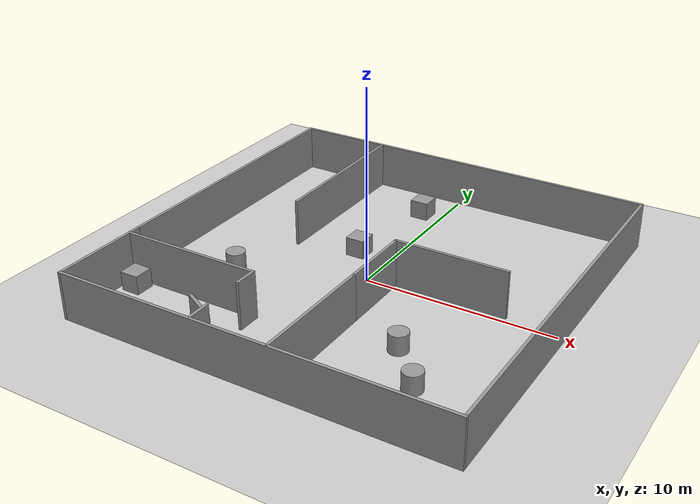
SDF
<sdf version="1.7">
 <world name="default">
  <light name="sun" type="directional">
   <pose>0 0 10 0 -0 0</pose>
   <diffuse>0.8 0.8 0.8 1</diffuse>
   <specular>0.2 0.2 0.2 1</specular>
   <attenuation>
    <range>1000</range>
    <constant>0.9</constant>
    <linear>0.01</linear>
    <quadratic>0.001</quadratic>
   </attenuation>
   <direction>-0.5 0.1 -0.9</direction>
   <spot><inner_angle>0</inner_angle><outer_angle>0</outer_angle><falloff>0</falloff></spot>
  </light>
  <model name="ground_plane">
   <static>1</static>
   <link name="link">
    <collision name="collision">
     <geometry><plane><normal>0 0 1</normal><size>100 100</size></plane></geometry>
     <surface><friction><ode><mu>100</mu><mu2>50</mu2></ode></friction></surface>
    </collision>
    <visual name="visual">
     <cast_shadows>0</cast_shadows>
     <geometry><plane><normal>0 0 1</normal><size>100 100</size></plane></geometry>
     <material>
      <script><uri>file://media/materials/scripts/gazebo.material</uri><name>Gazebo/Grey</name></script>
     </material>
    </visual>
   </link>
  </model>
  <gravity>0 0 -9.8</gravity>
  <magnetic_field>6e-06 2.3e-05 -4.2e-05</magnetic_field>
  <atmosphere type="adiabatic"/>
  <physics type="ode">
   <max_step_size>0.001</max_step_size>
   <real_time_factor>1</real_time_factor>
   <real_time_update_rate>1000</real_time_update_rate>
  </physics>
  <scene><ambient>0.4 0.4 0.4 1</ambient><background>0.7 0.7 0.7 1</background><shadows>1</shadows></scene>
  <audio><device>default</device></audio>
  <spherical_coordinates>
   <surface_model>EARTH_WGS84</surface_model>
   <latitude_deg>0</latitude_deg>
   <longitude_deg>0</longitude_deg>
   <elevation>0</elevation>
   <heading_deg>0</heading_deg>
  </spherical_coordinates>
  <model name="square">
   <pose>0.095 0.025 0 0 -0 0</pose>
   <link name="Wall_2">
    <collision name="Wall_2_Collision">
     <geometry><box><size>15.25 0.15 2.5</size></box></geometry>
     <pose>0 0 1.25 0 -0 0</pose>
    </collision>
    <visual name="Wall_2_Visual">
     <pose>0 0 1.25 0 -0 0</pose>
     <geometry><box><size>15.25 0.15 2.5</size></box></geometry>
     <material>
      <script><uri>file://media/materials/scripts/gazebo.material</uri><name>Gazebo/Grey</name></script>
      <ambient>1 1 1 1</ambient>
     </material>
     <meta><layer>0</layer></meta>
    </visual>
    <pose>-10.175 2.625 0 0 -0 1.5708</pose>
   </link>
   <link name="Wall_5">
    <collision name="Wall_5_Collision">
     <geometry><box><size>20.5 0.15 2.5</size></box></geometry>
     <pose>0 0 1.25 0 -0 0</pose>
    </collision>
    <visual name="Wall_5_Visual">
     <pose>0 0 1.25 0 -0 0</pose>
     <geometry><box><size>20.5 0.15 2.5</size></box></geometry>
     <material>
      <script><uri>file://media/materials/scripts/gazebo.material</uri><name>Gazebo/Grey</name></script>
      <ambient>1 1 1 1</ambient>
     </material>
     <meta><layer>0</layer></meta>
    </visual>
    <pose>-0 10.175 0 0 -0 0</pose>
   </link>
   <link name="Wall_6">
    <collision name="Wall_6_Collision">
     <geometry><box><size>20.5 0.15 2.5</size></box></geometry>
     <pose>0 0 1.25 0 -0 0</pose>
    </collision>
    <visual name="Wall_6_Visual">
     <pose>0 0 1.25 0 -0 0</pose>
     <geometry><box><size>20.5 0.15 2.5</size></box></geometry>
     <material>
      <script><uri>file://media/materials/scripts/gazebo.material</uri><name>Gazebo/Grey</name></script>
      <ambient>1 1 1 1</ambient>
     </material>
     <meta><layer>0</layer></meta>
    </visual>
    <pose>10.175 -0 0 0 -0 -1.5708</pose>
   </link>
   <link name="Wall_7">
    <collision name="Wall_7_Collision">
     <geometry><box><size>20.5 0.15 2.5</size></box></geometry>
     <pose>0 0 1.25 0 -0 0</pose>
    </collision>
    <visual name="Wall_7_Visual">
     <pose>0 0 1.25 0 -0 0</pose>
     <geometry><box><size>20.5 0.15 2.5</size></box></geometry>
     <material>
      <script><uri>file://media/materials/scripts/gazebo.material</uri><name>Gazebo/Grey</name></script>
      <ambient>1 1 1 1</ambient>
     </material>
     <meta><layer>0</layer></meta>
    </visual>
    <pose>-0 -10.175 0 0 -0 3.14159</pose>
   </link>
   <link name="Wall_8">
    <collision name="Wall_8_Collision">
     <geometry><box><size>5.25 0.15 2.5</size></box></geometry>
     <pose>0 0 1.25 0 -0 0</pose>
    </collision>
    <visual name="Wall_8_Visual">
     <pose>0 0 1.25 0 -0 0</pose>
     <geometry><box><size>5.25 0.15 2.5</size></box></geometry>
     <material>
      <script><uri>file://media/materials/scripts/gazebo.material</uri><name>Gazebo/Grey</name></script>
      <ambient>1 1 1 1</ambient>
     </material>
     <meta><layer>0</layer></meta>
    </visual>
    <pose>-10.175 -7.625 0 0 -0 1.5708</pose>
   </link>
   <static>1</static>
  </model>
  <model name="simple_room">
   <pose>-1.37102 -0.02919 0 0 -0 0</pose>
   <link name="Door_0">
    <collision name="Door_0_Collision">
     <geometry><box><size>2 0.17 2</size></box></geometry>
     <pose>0 0 1 0 -0 0</pose>
    </collision>
    <visual name="Door_0_Visual">
     <pose>0 0 1 0 -0 0</pose>
     <geometry><box><size>2 0.17 2</size></box></geometry>
     <material>
      <script><uri>file://media/materials/scripts/gazebo.material</uri><name>Gazebo/Grey</name></script>
     </material>
    </visual>
    <pose>-2.08927 -8.45441 0 0 -0 2.64049</pose>
   </link>
   <link name="Wall_11">
    <collision name="Wall_11_Collision">
     <geometry><box><size>1.25 0.15 2.5</size></box></geometry>
     <pose>0 0 1.25 0 -0 0</pose>
    </collision>
    <visual name="Wall_11_Visual">
     <pose>0 0 1.25 0 -0 0</pose>
     <geometry><box><size>1.25 0.15 2.5</size></box></geometry>
     <material>
      <script><uri>file://media/materials/scripts/gazebo.material</uri><name>Gazebo/Grey</name></script>
      <ambient>1 1 1 1</ambient>
     </material>
     <meta><layer>0</layer></meta>
    </visual>
    <pose>-1.25554 -9.47992 0 0 -0 -1.5708</pose>
   </link>
   <link name="Wall_13">
    <collision name="Wall_13_Collision">
     <geometry><box><size>6.75 0.15 2.5</size></box></geometry>
     <pose>0 0 1.25 0 -0 0</pose>
    </collision>
    <visual name="Wall_13_Visual">
     <pose>0 0 1.25 0 -0 0</pose>
     <geometry><box><size>6.75 0.15 2.5</size></box></geometry>
     <material>
      <script><uri>file://media/materials/scripts/gazebo.material</uri><name>Gazebo/Grey</name></script>
      <ambient>1 1 1 1</ambient>
     </material>
     <meta><layer>0</layer></meta>
    </visual>
    <pose>2.77898 -6.78627 0 0 -0 -1.5708</pose>
   </link>
   <link name="Wall_15">
    <collision name="Wall_15_Collision">
     <geometry><box><size>4 0.15 2.5</size></box></geometry>
     <pose>0 0 1.25 0 -0 0</pose>
    </collision>
    <visual name="Wall_15_Visual">
     <pose>0 0 1.25 0 -0 0</pose>
     <geometry><box><size>4 0.15 2.5</size></box></geometry>
     <material>
      <script><uri>file://media/materials/scripts/gazebo.material</uri><name>Gazebo/Grey</name></script>
      <ambient>1 1 1 1</ambient>
     </material>
     <meta><layer>0</layer></meta>
    </visual>
    <pose>2.77898 -1.56127 0 0 -0 1.5708</pose>
   </link>
   <link name="Wall_17">
    <collision name="Wall_17_Collision">
     <geometry><box><size>6 0.15 2.5</size></box></geometry>
     <pose>0 0 1.25 0 -0 0</pose>
    </collision>
    <visual name="Wall_17_Visual">
     <pose>0 0 1.25 0 -0 0</pose>
     <geometry><box><size>6 0.15 2.5</size></box></geometry>
     <material>
      <script><uri>file://media/materials/scripts/gazebo.material</uri><name>Gazebo/Grey</name></script>
      <ambient>1 1 1 1</ambient>
     </material>
     <meta><layer>0</layer></meta>
    </visual>
    <pose>5.70398 0.363726 0 0 -0 0</pose>
   </link>
   <link name="Wall_20">
    <collision name="Wall_20_Collision">
     <geometry><box><size>8.75 0.15 2.5</size></box></geometry>
     <pose>0 0 1.25 0 -0 0</pose>
    </collision>
    <visual name="Wall_20_Visual">
     <pose>0 0 1.25 0 -0 0</pose>
     <geometry><box><size>8.75 0.15 2.5</size></box></geometry>
     <material>
      <script><uri>file://media/materials/scripts/gazebo.material</uri><name>Gazebo/Grey</name></script>
      <ambient>1 1 1 1</ambient>
     </material>
     <meta><layer>0</layer></meta>
    </visual>
    <pose>-3.72755 5.78627 0 0 -0 1.5708</pose>
   </link>
   <link name="Wall_6">
    <collision name="Wall_6_Collision">
     <geometry><box><size>7.5 0.15 2.5</size></box></geometry>
     <pose>0 0 1.25 0 -0 0</pose>
    </collision>
    <visual name="Wall_6_Visual">
     <pose>0 0 1.25 0 -0 0</pose>
     <geometry><box><size>7.5 0.15 2.5</size></box></geometry>
     <material>
      <script><uri>file://media/materials/scripts/gazebo.material</uri><name>Gazebo/Grey</name></script>
      <ambient>1 1 1 1</ambient>
     </material>
     <meta><layer>0</layer></meta>
    </visual>
    <pose>-4.95398 -5.58081 0 0 -0 3.14159</pose>
   </link>
   <link name="Wall_9">
    <collision name="Wall_9_Collision">
     <geometry><box><size>1.25 0.15 2.5</size></box></geometry>
     <pose>0 0 1.25 0 -0 0</pose>
    </collision>
    <visual name="Wall_9_Visual">
     <pose>0 0 1.25 0 -0 0</pose>
     <geometry><box><size>1.25 0.15 2.5</size></box></geometry>
     <material>
      <script><uri>file://media/materials/scripts/gazebo.material</uri><name>Gazebo/Grey</name></script>
      <ambient>1 1 1 1</ambient>
     </material>
     <meta><layer>0</layer></meta>
    </visual>
    <pose>-1.27898 -6.13081 0 0 -0 -1.5708</pose>
   </link>
   <static>1</static>
  </model>
  <model name="unit_box">
   <pose>-1.80561 2.24062 0.5 0 0 -0.000307</pose>
   <link name="link">
    <inertial>
     <mass>1</mass>
     <inertia>
      <ixx>0.166667</ixx>
      <ixy>0</ixy>
      <ixz>0</ixz>
      <iyy>0.166667</iyy>
      <iyz>0</iyz>
      <izz>0.166667</izz>
     </inertia>
    </inertial>
    <collision name="collision"><geometry><box><size>1 1 1</size></box></geometry></collision>
    <visual name="visual">
     <geometry><box><size>1 1 1</size></box></geometry>
     <material>
      <script><name>Gazebo/Grey</name><uri>file://media/materials/scripts/gazebo.material</uri></script>
     </material>
    </visual>
   </link>
  </model>
  <model name="unit_cylinder">
   <pose>4.31928 -4.51078 0.499994 5e-06 -5e-06 2e-06</pose>
   <link name="link">
    <inertial>
     <mass>1</mass>
     <inertia><ixx>0.145833</ixx><ixy>0</ixy><ixz>0</ixz><iyy>0.145833</iyy><iyz>0</iyz><izz>0.125</izz></inertia>
    </inertial>
    <collision name="collision">
     <geometry><cylinder><radius>0.5</radius><length>1</length></cylinder></geometry>
    </collision>
    <visual name="visual">
     <geometry><cylinder><radius>0.5</radius><length>1</length></cylinder></geometry>
     <material>
      <script><name>Gazebo/Grey</name><uri>file://media/materials/scripts/gazebo.material</uri></script>
     </material>
    </visual>
   </link>
  </model>
  <model name="unit_cylinder_0">
   <pose>6.26387 -6.74898 0.499993 6e-06 -5e-06 0</pose>
   <link name="link">
    <inertial>
     <mass>1</mass>
     <inertia><ixx>0.145833</ixx><ixy>0</ixy><ixz>0</ixz><iyy>0.145833</iyy><iyz>0</iyz><izz>0.125</izz></inertia>
    </inertial>
    <collision name="collision">
     <geometry><cylinder><radius>0.5</radius><length>1</length></cylinder></geometry>
    </collision>
    <visual name="visual">
     <geometry><cylinder><radius>0.5</radius><length>1</length></cylinder></geometry>
     <material>
      <script><name>Gazebo/Grey</name><uri>file://media/materials/scripts/gazebo.material</uri></script>
     </material>
    </visual>
   </link>
  </model>
  <model name="unit_box_0">
   <pose>-9.37931 -9.40304 0.5 0 0 -0.000219</pose>
   <link name="link">
    <inertial>
     <mass>1</mass>
     <inertia>
      <ixx>0.166667</ixx>
      <ixy>0</ixy>
      <ixz>0</ixz>
      <iyy>0.166667</iyy>
      <iyz>0</iyz>
      <izz>0.166667</izz>
     </inertia>
    </inertial>
    <collision name="collision"><geometry><box><size>1 1 1</size></box></geometry></collision>
    <visual name="visual">
     <geometry><box><size>1 1 1</size></box></geometry>
     <material>
      <script><name>Gazebo/Grey</name><uri>file://media/materials/scripts/gazebo.material</uri></script>
     </material>
    </visual>
   </link>
  </model>
  <model name="unit_box_1">
   <pose>-9.21585 -6.35391 0.5 0 0 -0.000455</pose>
   <link name="link">
    <inertial>
     <mass>1</mass>
     <inertia>
      <ixx>0.166667</ixx>
      <ixy>0</ixy>
      <ixz>0</ixz>
      <iyy>0.166667</iyy>
      <iyz>0</iyz>
      <izz>0.166667</izz>
     </inertia>
    </inertial>
    <collision name="collision"><geometry><box><size>1 1 1</size></box></geometry></collision>
    <visual name="visual">
     <geometry><box><size>1 1 1</size></box></geometry>
     <material>
      <script><name>Gazebo/Grey</name><uri>file://media/materials/scripts/gazebo.material</uri></script>
     </material>
    </visual>
   </link>
  </model>
  <model name="unit_cylinder_1">
   <pose>-6.27055 -2.32374 0.499997 -6e-06 6e-06 -1e-06</pose>
   <link name="link">
    <inertial>
     <mass>1</mass>
     <inertia><ixx>0.145833</ixx><ixy>0</ixy><ixz>0</ixz><iyy>0.145833</iyy><iyz>0</iyz><izz>0.125</izz></inertia>
    </inertial>
    <collision name="collision">
     <geometry><cylinder><radius>0.5</radius><length>1</length></cylinder></geometry>
    </collision>
    <visual name="visual">
     <geometry><cylinder><radius>0.5</radius><length>1</length></cylinder></geometry>
     <material>
      <script><name>Gazebo/Grey</name><uri>file://media/materials/scripts/gazebo.material</uri></script>
     </material>
    </visual>
   </link>
  </model>
  <model name="unit_box_2">
   <pose>-1.08101 7.78707 0.5 0 0 -0.000236</pose>
   <link name="link">
    <inertial>
     <mass>1</mass>
     <inertia>
      <ixx>0.166667</ixx>
      <ixy>0</ixy>
      <ixz>0</ixz>
      <iyy>0.166667</iyy>
      <iyz>0</iyz>
      <izz>0.166667</izz>
     </inertia>
    </inertial>
    <collision name="collision"><geometry><box><size>1 1 1</size></box></geometry></collision>
    <visual name="visual">
     <geometry><box><size>1 1 1</size></box></geometry>
     <material>
      <script><name>Gazebo/Grey</name><uri>file://media/materials/scripts/gazebo.material</uri></script>
     </material>
    </visual>
   </link>
  </model>
 </world>
</sdf>
